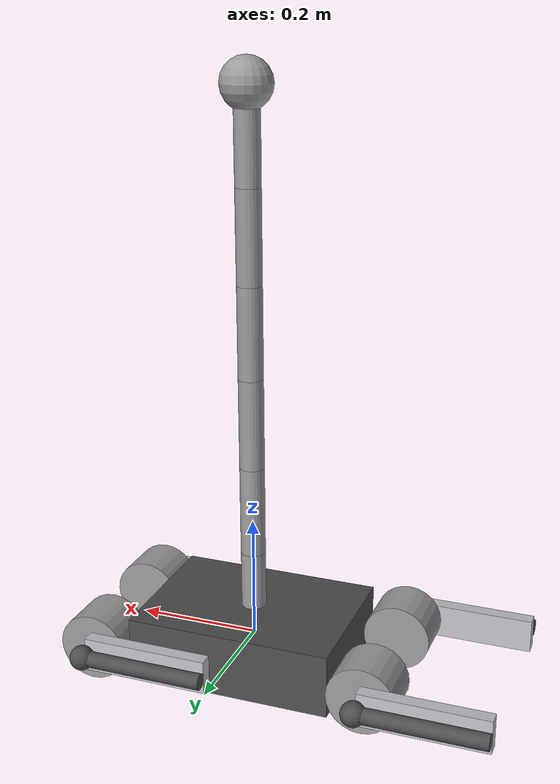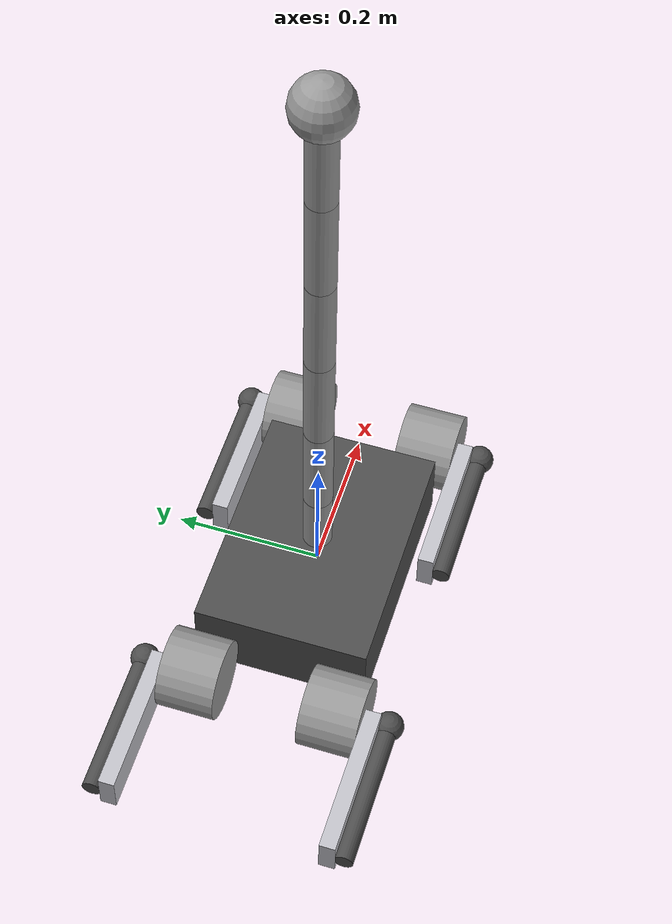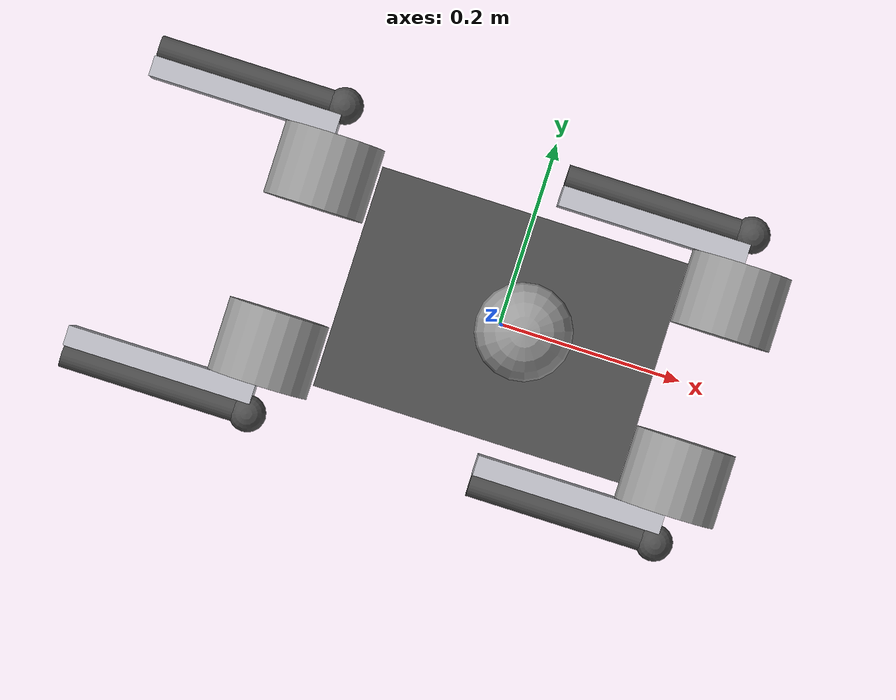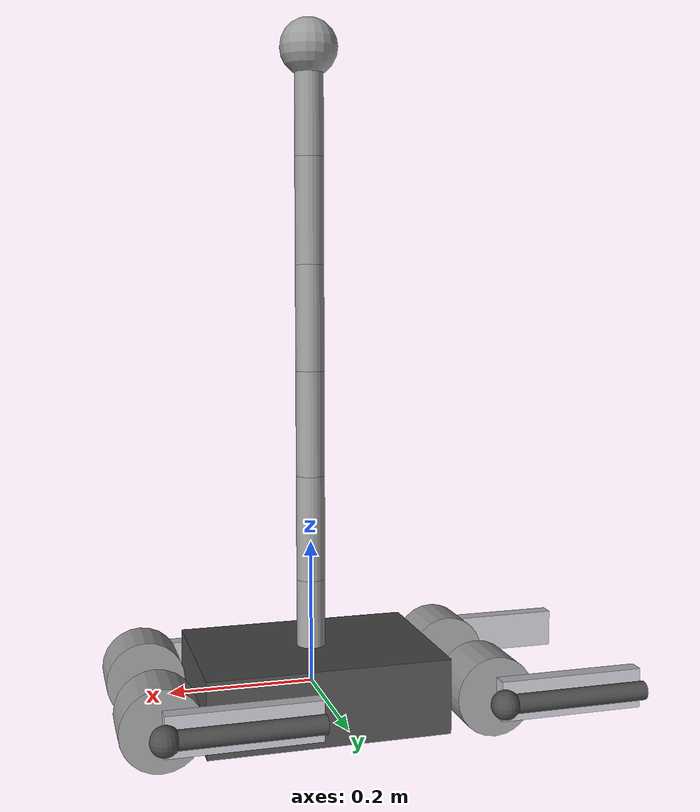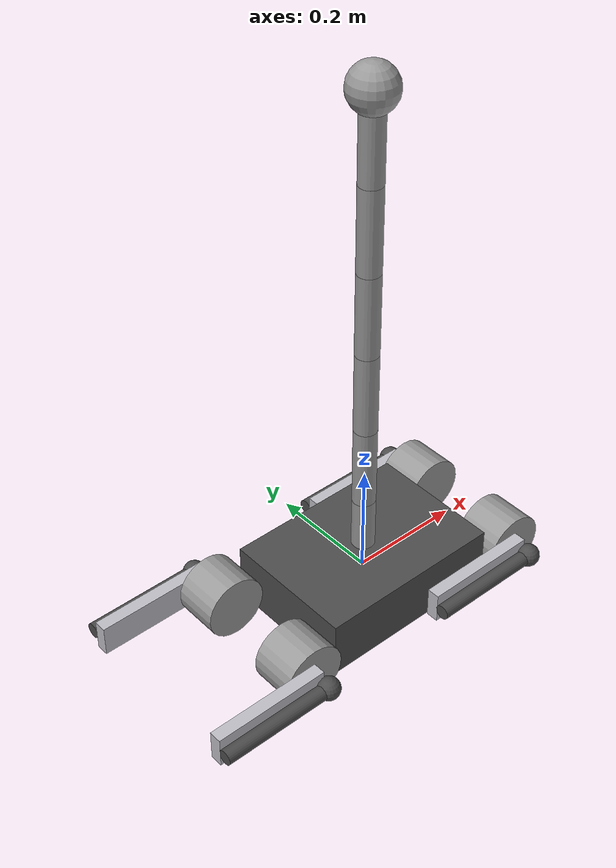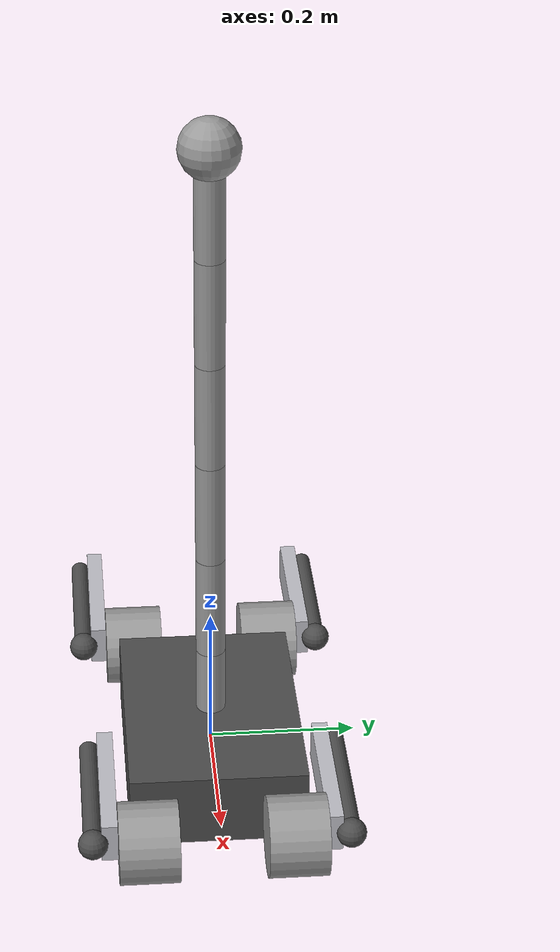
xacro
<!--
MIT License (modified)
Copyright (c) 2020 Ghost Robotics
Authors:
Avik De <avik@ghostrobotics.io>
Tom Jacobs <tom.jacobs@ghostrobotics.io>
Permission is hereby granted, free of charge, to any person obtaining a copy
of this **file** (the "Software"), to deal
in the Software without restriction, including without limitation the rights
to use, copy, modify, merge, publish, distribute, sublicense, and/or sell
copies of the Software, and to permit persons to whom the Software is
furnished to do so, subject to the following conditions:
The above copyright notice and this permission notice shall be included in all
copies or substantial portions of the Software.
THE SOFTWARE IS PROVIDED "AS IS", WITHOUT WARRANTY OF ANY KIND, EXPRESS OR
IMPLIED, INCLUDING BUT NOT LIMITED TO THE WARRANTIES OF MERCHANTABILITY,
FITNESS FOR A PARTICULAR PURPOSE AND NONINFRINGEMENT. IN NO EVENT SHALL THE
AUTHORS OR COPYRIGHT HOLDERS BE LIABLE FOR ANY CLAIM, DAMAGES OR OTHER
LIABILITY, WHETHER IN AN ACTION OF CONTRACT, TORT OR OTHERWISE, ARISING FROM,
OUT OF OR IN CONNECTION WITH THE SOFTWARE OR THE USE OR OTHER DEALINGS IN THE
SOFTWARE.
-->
<?xml version="1.0"?>

<robot xmlns:xacro="http://www.ros.org/wiki/xacro" name="spirit">

    <!-- Define parameters -->
    <!-- bodyLength + hipdx should be equal to front to back hip distance -->
    <!-- dy +  dPodAxisToEdge + upperLegWidth should be equal to the center to toe distance along y axis-->
    <xacro:property name="pi" value="3.14159265359" />
    <xacro:property name="bodyLength" value="0.335" />
    <xacro:property name="bodyWidth" value="0.24" />
    <xacro:property name="bodyHeight" value="0.104" />
    <xacro:property name="bodyMass" value="5.75" /> <!-- Original: 5.75 -->
    <xacro:property name="podMass" value="0.575" />
    <xacro:property name="upperLegMass" value="0.792" /> <!-- Original: 0.775 -->
    <xacro:property name="upperLegIxx" value="0.005" /> <!-- guess --> <!-- Original: 0.005 -->
    <xacro:property name="upperLegIyy" value="0.0070" /> <!-- guess --> <!-- Original: 0.001 -->
    <xacro:property name="upperLegIzz" value="0.0070" /> <!-- guess --> <!-- Original: 0.0070 -->
    <xacro:property name="lowerLegMass" value="0.075" />
    <xacro:property name="lowerLegIxx" value="0.000005" /> <!-- guess -->
    <xacro:property name="lowerLegIyy" value="0.0001" /> <!-- guess -->
    <xacro:property name="lowerLegIzz" value="0.0001" /> <!-- guess -->
    <xacro:property name="toeMass" value="0.015" />
    <xacro:property name="upperLegLength" value="0.206" />
    <xacro:property name="upperLegWidth" value="0.022" />
    <xacro:property name="upperLegHeight" value="0.055" />
    <xacro:property name="lowerLegLength" value="0.206" />
    <xacro:property name="lowerLegRadius" value="0.013" /> <!--visual only-->
    <xacro:property name="podLength" value="0.08" />
    <xacro:property name="podRadius" value="0.055" />
    <xacro:property name="dPodAxisToEdge" value="0.028" /> <!--center of pod cylinder to the ab axis-->
    <xacro:property name="abOffs" value="0.10098" />
    <xacro:property name="dx" value="0.2263" />
    <xacro:property name="dy" value="0.07" />
    <xacro:property name="toeRadius" value="0.02" />
    <xacro:property name="toeOffset" value="0.0" />
    <xacro:property name="toeStiffness" value="30000.0" />
    <xacro:property name="toeDamping" value="1000.0" />
    <xacro:property name="toeSpinningFriction" value="0.3" />
    <xacro:property name="toeFriction" value="100.0" />
    <xacro:property name="toeLateralFriction" value="50.0" />
    <xacro:property name="abKinLimit" value="0.707" />
    <xacro:property name="abSpeedLimit" value="37.7" /> <!-- Original: 37.7 -->
    <xacro:property name="abEffortLimit" value="21" /> <!-- Original: 40 -->
    <xacro:property name="jointSpeedLimit" value="37.7" /> <!-- Original: 30 -->
    <xacro:property name="jointEffortLimit" value="21" /> <!-- Original: 40 -->
    <xacro:property name="tailNum" value="6" />
    <xacro:property name="tailLength" value="${0.8816/tailNum}" />
    <xacro:property name="tailLinkMass" value="${1e-03}" />

    <!-- Plugins -->
    <gazebo>
        <plugin name="gazebo_ros_control" filename="libgazebo_ros_control.so">
            <robotNamespace>/spirit</robotNamespace>
            <controlPeriod>0.002</controlPeriod>
        </plugin>
        <plugin name="ground_truth_estimator" filename="libground_truth_estimator.so">
            <updateRateHz>500.0</updateRateHz>
        </plugin>
    </gazebo>

    <!-- Body -->
    <link name="body">
        <visual>
            <origin rpy="0 0 0" xyz="0 0 0" />
            <geometry>
                <box size="${bodyLength} ${bodyWidth} ${bodyHeight}" />
            </geometry>
            <material name="darkgray" />
        </visual>

        <inertial>
            <mass value="7.388" />
            <!-- Uniform box -->
            <inertia ixx="0.0642434782" ixy="0" ixz="0" iyy="0.1284869565" iyz="0" izz="0.1284869565" />
        </inertial>

        <!-- Just copy geometry for collision -->
        <collision>
            <origin rpy="0 0 0" xyz="0 0 0" />
            <geometry>
                <box size="${bodyLength} ${bodyWidth} ${bodyHeight}" />
            </geometry>
        </collision>
    </link>
    <gazebo reference="body">
        <material>Gazebo/Black</material>
    </gazebo>

    <!-- Define our leg macro -->
    <xacro:macro name="leg" params="suffix left front hipJointName kneeJointName abductionJointName hipJointLowerLimit hipJointUpperLimit color">

        <!-- Hip motor -->
        <link name="hip${suffix}">
            <visual>
                <origin rpy="${pi/2} 0 0" xyz="${front * 0} ${left * (dPodAxisToEdge)} 0" />
                <geometry>
                    <cylinder length="${podLength}" radius="${podRadius}" />
                </geometry>
            </visual>

            <collision>
                <origin rpy="${pi/2} 0 0" xyz="0 ${left * (dPodAxisToEdge)} 0" />
                <geometry>
                    <cylinder length="${podLength}" radius="${podRadius}" />
                </geometry>
            </collision>

            <inertial>
                <origin rpy="${pi/2} 0 0" xyz="0 ${left * (dPodAxisToEdge)} 0" />
                <mass value="${podMass}" />
                <inertia ixx="${1/12*podMass*(podLength*podLength + 3*podRadius*podRadius)}" ixy="0" ixz="0" iyy="${1/12*podMass*(podLength*podLength + 3*podRadius*podRadius)}" iyz="0" izz="${1/2*podMass*podRadius*podRadius}" /> <!-- Okay for now... forgot when cylinder is formed what direction is x pointing in -->
                <!--inertia ixx="0.00066963541" ixy="0" ixz="0" iyy="0.00066963541" iyz="0" izz="0.0008696875" /-->
            </inertial>
        </link>
        <gazebo reference="hip${suffix}">
            <material>Gazebo/Grey</material>
        </gazebo>

        <!-- Abduction joint. Joint names are: 8 9 10 11 -->
        <joint name="${abductionJointName}" type="revolute">
            <parent link="body" />
            <child link="hip${suffix}" />
            <axis xyz="1 0 0" />
            <origin xyz="${front * dx} ${left * dy} 0" />
            <limit effort="${abEffortLimit}" velocity="${abSpeedLimit}" lower="${-abKinLimit}" upper="${abKinLimit}" />
            <dynamics damping="0.0" friction="0.0" />
        </joint>

        <!-- Transmission elements required for Gazebo -->
        <transmission name="transmission_${abductionJointName}">
            <type>transmission_interface/SimpleTransmission</type>
            <joint name="${abductionJointName}">
                <hardwareInterface>hardware_interface/EffortJointInterface</hardwareInterface>
            </joint>
            <actuator name="motor_${abductionJointName}">
                <hardwareInterface>EffortJointInterface</hardwareInterface>
                <mechanicalReduction>1</mechanicalReduction>
            </actuator>
        </transmission>

        <!-- Upper leg -->
        <link name="upper${suffix}">
            <visual>
                <origin rpy="0 0 0" xyz="-${upperLegLength/2} ${-left*upperLegWidth} 0" />
                <geometry>
                    <box size="${upperLegLength} ${upperLegWidth} ${upperLegHeight}" />
                </geometry>
                <material name="silver" />
            </visual>

            <collision>
                <origin rpy="0 0 0" xyz="-${upperLegLength/2} ${-left*upperLegWidth} 0" />
                <geometry>
                    <box size="${upperLegLength} ${upperLegWidth} ${upperLegHeight}" />
                </geometry>
            </collision>

            <inertial>
                <origin xyz="${-upperLegLength/2} ${-left*upperLegWidth} 0" rpy="0 0 0" />
                <mass value="${upperLegMass}" />
                <inertia ixx="${upperLegMass/12*(upperLegWidth*upperLegWidth + upperLegHeight*upperLegHeight)}" ixy="0" ixz="0"
                    iyy="${upperLegMass/12*(upperLegLength*upperLegLength + upperLegHeight*upperLegHeight)}" iyz="0"
                    izz="${upperLegMass/12*(upperLegWidth*upperLegWidth + upperLegLength*upperLegLength)}" />
            </inertial>
        </link>
        <gazebo reference="upper${suffix}">
            <self_collide>0</self_collide>
            <material>Gazebo/DarkGrey</material>
        </gazebo>

        <!-- Hip joint. (Motor to upper leg). Joint names are: 0 2 4 6 -->
        <joint name="${hipJointName}" type="revolute">
            <parent link="hip${suffix}" />
            <child link="upper${suffix}" />
            <axis xyz="0 -1 0" />
            <origin xyz="${front * 0} ${left * abOffs} 0" /> <!--  rpy="0 -0.3 0" -->
            <limit effort="${jointEffortLimit}" velocity="${jointSpeedLimit}" lower="${hipJointLowerLimit}" upper="${hipJointUpperLimit}" />
            <dynamics damping="0.0" friction="0.0" />
        </joint>

        <!-- Transmission elements required for Gazebo -->
        <transmission name="transmission_${hipJointName}">
            <type>transmission_interface/SimpleTransmission</type>
            <joint name="${hipJointName}">
                <hardwareInterface>hardware_interface/EffortJointInterface</hardwareInterface>
            </joint>
            <actuator name="motor_${hipJointName}">
                <hardwareInterface>EffortJointInterface</hardwareInterface>
                <mechanicalReduction>1</mechanicalReduction>
            </actuator>
        </transmission>

        <!-- Lower leg -->
        <link name="lower${suffix}">
            <self_collide>0</self_collide>
            <visual>
                <origin rpy="0 ${pi/2} 0" xyz="${lowerLegLength/2} 0 0" />
                <geometry>
                    <cylinder length="${lowerLegLength}" radius="${lowerLegRadius}" />
                </geometry>
                <material name="darkgray" />
            </visual>

            <collision>
                <origin rpy="0 ${pi/2} 0" xyz="${lowerLegLength/2} 0 0" />
                <geometry>
                    <cylinder length="${lowerLegLength}" radius="${lowerLegRadius}" />
                </geometry>
            </collision>

            <inertial>
                <origin xyz="${lowerLegLength/2} 0 0" rpy="0 0 0" />
                <mass value="${lowerLegMass}" />
                <!--inertia ixx="${lowerLegIxx}" ixy="0" ixz="0" iyy="${lowerLegIyy}" iyz="0" izz="${lowerLegIzz}" /-->
                <inertia ixx="${lowerLegMass/12*(upperLegWidth*upperLegWidth + upperLegHeight*upperLegHeight)}" ixy="0" ixz="0"
                    iyy="${lowerLegMass/12*(upperLegLength*upperLegLength + upperLegHeight*upperLegHeight)}" iyz="0"
                    izz="${lowerLegMass/12*(upperLegWidth*upperLegWidth + upperLegLength*upperLegLength)}" />
            </inertial>
        </link>
        <gazebo reference="lower${suffix}">
            <material>Gazebo/Grey</material>
        </gazebo>

        <!-- Knee joint. Joint names are: 1 3 5 7 -->
        <joint name="${kneeJointName}" type="revolute">
            <parent link="upper${suffix}" />
            <child link="lower${suffix}" />
            <axis xyz="0 1 0" />
            <origin xyz="-${upperLegLength} 0 0" /> <!--rpy="0 0.5 0"-->
            <limit effort="${32}" velocity="${25.1}" lower="-6.28" upper="${6.28}" />
            <dynamics damping="0.0" friction="0.0" />
        </joint>

        <!-- Transmission elements required for Gazebo -->
        <transmission name="transmission_${kneeJointName}">
            <type>transmission_interface/SimpleTransmission</type>
            <joint name="${kneeJointName}">
                <hardwareInterface>hardware_interface/EffortJointInterface</hardwareInterface>
            </joint>
            <actuator name="motor_${kneeJointName}">
                <hardwareInterface>EffortJointInterface</hardwareInterface>
                <mechanicalReduction>1</mechanicalReduction>
            </actuator>
        </transmission>

        <!-- Toe -->
        <link name="toe${suffix}">
            <contact>
                <friction_anchor />
                <stiffness value="${toeStiffness}" />
                <damping value="${toeDamping}" />
                <spinning_friction value="${toeSpinningFriction}" />
                <lateral_friction value="${toeLateralFriction}" />
            </contact>
            <visual>
                <origin rpy="0 0 0" xyz="0 0 0" />
                <geometry>
                    <sphere radius="${toeRadius}" />
                </geometry>
                <material name="darkgray" />
            </visual>

            <collision>
                <origin rpy="0 0 0" xyz="0 0 0" />
                <geometry>
                    <sphere radius="${toeRadius}" />
                </geometry>
            </collision>

            <inertial>
                <mass value="${toeMass}" />
                <inertia ixx="0.000025" ixy="0" ixz="0" iyy="0.000025" iyz="0" izz="0.000025" />
            </inertial>
        </link>
        <gazebo reference="toe${suffix}">
            <self_collide>0</self_collide>
            <material>Gazebo/Black</material>
            <collision>
                <surface>
                    <bounce>
                        <restitution_coefficient>0</restitution_coefficient>
                        <threshold>1e+06</threshold>
                    </bounce>
                    <friction>
                        <torsional>
                            <coefficient>${toeSpinningFriction}</coefficient>
                        </torsional>
                        <ode>
                            <mu>${toeFriction}</mu>
                            <mu2>${toeLateralFriction}</mu2>
                        </ode>
                        <bullet>
                            <rolling_friction>${toeSpinningFriction}</rolling_friction>
                            <friction2>${toeLateralFriction}</friction2>
                        </bullet>
                    </friction>
                    <contact>
                        <bullet>
                            <kp>${toeStiffness}</kp>
                            <kd>${toeDamping}</kd>
                        </bullet>
                        <ode>
                            <kp>${toeStiffness}</kp>
                            <kd>${toeDamping}</kd>
                        </ode>
                    </contact>
                </surface>
            </collision>
        </gazebo>

        <joint name="jtoe${suffix}" type="fixed">
            <parent link="lower${suffix}" />
            <child link="toe${suffix}" />
            <origin xyz="${lowerLegLength} 0 -${toeOffset}" />
            <dynamics damping="0.0" friction="0.0" />
        </joint>
    </xacro:macro>

    <!-- Our four legs -->
    <xacro:leg suffix="0" hipJointName="0" kneeJointName="1" abductionJointName="8" front="1" left="1" hipJointLowerLimit="${-1.57}" hipJointUpperLimit="${3.14}" color="darkgray" />
    <xacro:leg suffix="1" hipJointName="2" kneeJointName="3" abductionJointName="9" front="-1" left="1" hipJointLowerLimit="${-1.57}" hipJointUpperLimit="${3.14}" color="darkgray" />
    <xacro:leg suffix="2" hipJointName="4" kneeJointName="5" abductionJointName="10" front="1" left="-1" hipJointLowerLimit="${-1.57}" hipJointUpperLimit="${3.14}" color="darkgray" />
    <xacro:leg suffix="3" hipJointName="6" kneeJointName="7" abductionJointName="11" front="-1" left="-1" hipJointLowerLimit="${-1.57}" hipJointUpperLimit="${3.14}" color="darkgray" />

    <!-- Toe Plugins -->
    <gazebo reference="toe0">
        <sensor name="toe0_contact" type="contact">
            <plugin filename="libgazebo_ros_bumper.so" name="toe0_plugin">
                <alwaysOn>true</alwaysOn>
                <updateRate>500</updateRate>
                <bumperTopicName>gazebo/toe0_contact_state</bumperTopicName>
                <frameName>world</frameName>
            </plugin>
            <contact>
                <collision>toe0_collision</collision>
            </contact>
            <update_rate>500</update_rate>
        </sensor>
    </gazebo>
    <gazebo reference="toe1">
        <sensor name="toe1_contact" type="contact">
            <plugin filename="libgazebo_ros_bumper.so" name="toe1_plugin">
                <alwaysOn>true</alwaysOn>
                <updateRate>500</updateRate>
                <bumperTopicName>gazebo/toe1_contact_state</bumperTopicName>
                <frameName>world</frameName>
            </plugin>
            <contact>
                <collision>toe1_collision</collision>
            </contact>
            <update_rate>500</update_rate>
        </sensor>
    </gazebo>

    <gazebo reference="toe2">
        <sensor name="toe2_contact" type="contact">
            <plugin filename="libgazebo_ros_bumper.so" name="toe2_plugin">
                <alwaysOn>true</alwaysOn>
                <updateRate>500</updateRate>
                <bumperTopicName>gazebo/toe2_contact_state</bumperTopicName>
                <frameName>world</frameName>
            </plugin>
            <contact>
                <collision>toe2_collision</collision>
            </contact>
            <update_rate>500</update_rate>
        </sensor>
    </gazebo>

    <gazebo reference="toe3">
        <sensor name="toe3_contact" type="contact">
            <plugin filename="libgazebo_ros_bumper.so" name="toe3_plugin">
                <alwaysOn>true</alwaysOn>
                <updateRate>500</updateRate>
                <bumperTopicName>gazebo/toe3_contact_state</bumperTopicName>
                <frameName>world</frameName>
            </plugin>
            <contact>
                <collision>toe3_collision</collision>
            </contact>
            <update_rate>500</update_rate>
        </sensor>
    </gazebo>
    <!-- Preserve fixed joints -->
    <gazebo reference='jtoe0'>
        <preserveFixedJoint>true</preserveFixedJoint>
    </gazebo>
    <gazebo reference='jtoe1'>
        <preserveFixedJoint>true</preserveFixedJoint>
    </gazebo>
    <gazebo reference='jtoe2'>
        <preserveFixedJoint>true</preserveFixedJoint>
    </gazebo>
    <gazebo reference='jtoe3'>
        <preserveFixedJoint>true</preserveFixedJoint>
    </gazebo>

    <!-- TAIL -->
    <!-- Remark: Need to incorporate reasonable mass & inertia calc wrt tailLength -->
    <!-- Tail Links -->
    <link name="tail_link_0">
        <visual>
            <origin rpy="0 0 0" xyz="0 0 ${tailLength/2}" />
            <geometry>
                <cylinder radius="0.02" length="${tailLength}" />
            </geometry>
            <material name="gray" />
        </visual>
        <inertial>
            <origin xyz="0 0 ${tailLength/2}" rpy="0 0 0" />
            <mass value="${tailLinkMass}" />
            <!-- Assume inertia of a sphere & scale base of 2/5MR^2 -->
            <inertia ixx="${1e-04/(tailNum*tailNum)}" ixy="0" ixz="0" iyy="${1e-04/(tailNum*tailNum)}" iyz="0" izz="${1e-04/(tailNum*tailNum)}" />
        </inertial>
        <!-- No need to add collision boxes for this -->
    </link>
    <gazebo reference="tail_link_0">
        <material>Gazebo/Gray</material>
    </gazebo>

    <link name="tail_link_1">
        <visual>
            <origin rpy="0 0 0" xyz="0 0 ${tailLength/2}" />
            <geometry>
                <cylinder radius="0.02" length="${tailLength}" />
            </geometry>
            <material name="gray" />
        </visual>
        <inertial>
            <origin xyz="0 0 ${tailLength/2}" rpy="0 0 0" />
            <mass value="${tailLinkMass}" />
            <inertia ixx="${1e-04/(tailNum*tailNum)}" ixy="0" ixz="0" iyy="${1e-04/(tailNum*tailNum)}" iyz="0" izz="${1e-04/(tailNum*tailNum)}" />
        </inertial>
    </link>

    <gazebo reference="tail_link_1">
        <material>Gazebo/Gray</material>
    </gazebo>

    <link name="tail_link_2">
        <visual>
            <origin rpy="0 0 0" xyz="0 0 ${tailLength/2}" />
            <geometry>
                <cylinder radius="0.02" length="${tailLength}" />
            </geometry>
            <material name="gray" />
        </visual>
        <inertial>
            <origin xyz="0 0 ${tailLength/2}" rpy="0 0 0" />
            <mass value="${tailLinkMass}" />
            <inertia ixx="${1e-04/(tailNum*tailNum)}" ixy="0" ixz="0" iyy="${1e-04/(tailNum*tailNum)}" iyz="0" izz="${1e-04/(tailNum*tailNum)}" />
        </inertial>
    </link>

    <gazebo reference="tail_link_2">
        <material>Gazebo/Gray</material>
    </gazebo>

    <link name="tail_link_3">
        <visual>
            <origin rpy="0 0 0" xyz="0 0 ${tailLength/2}" />
            <geometry>
                <cylinder radius="0.02" length="${tailLength}" />
            </geometry>
            <material name="gray" />
        </visual>
        <inertial>
            <origin xyz="0 0 ${tailLength/2}" rpy="0 0 0" />
            <mass value="${tailLinkMass}" />
            <inertia ixx="${1e-04/(tailNum*tailNum)}" ixy="0" ixz="0" iyy="${1e-04/(tailNum*tailNum)}" iyz="0" izz="${1e-04/(tailNum*tailNum)}" />
        </inertial>
    </link>

    <gazebo reference="tail_link_3">
        <material>Gazebo/Gray</material>
    </gazebo>

    <link name="tail_link_4">
        <visual>
            <origin rpy="0 0 0" xyz="0 0 ${tailLength/2}" />
            <geometry>
                <cylinder radius="0.02" length="${tailLength}" />
            </geometry>
            <material name="gray" />
        </visual>
        <inertial>
            <origin xyz="0 0 ${tailLength/2}" rpy="0 0 0" />
            <mass value="${tailLinkMass}" />
            <inertia ixx="${1e-04/(tailNum*tailNum)}" ixy="0" ixz="0" iyy="${1e-04/(tailNum*tailNum)}" iyz="0" izz="${1e-04/(tailNum*tailNum)}" />
        </inertial>
    </link>

    <gazebo reference="tail_link_4">
        <material>Gazebo/Gray</material>
    </gazebo>

    <link name="tail_link_5">
        <visual>
            <origin rpy="0 0 0" xyz="0 0 ${tailLength/2}" />
            <geometry>
                <cylinder radius="0.02" length="${tailLength}" />
            </geometry>
            <material name="gray" />
        </visual>
        <inertial>
            <origin xyz="0 0 ${tailLength/2}" rpy="0 0 0" />
            <mass value="${tailLinkMass}" />
            <inertia ixx="${1e-04/(tailNum*tailNum)}" ixy="0" ixz="0" iyy="${1e-04/(tailNum*tailNum)}" iyz="0" izz="${1e-04/(tailNum*tailNum)}" />
        </inertial>
    </link>

    <gazebo reference="tail_link_5">
        <material>Gazebo/Gray</material>
    </gazebo>

    <link name="tail_mass">
        <visual>
            <origin rpy="0 0 0" xyz="0 0 0" />
            <geometry>
                <sphere radius="0.04" />
            </geometry>
            <material name="gray" />
        </visual>
        <inertial>
            <mass value="0.2764" />
            <inertia ixx="2.764e-04" ixy="0" ixz="0" iyy="2.764e-04" iyz="0" izz="2.764e-04" />
        </inertial>
        <collision>
            <origin rpy="0 0 0" xyz=" 0 0 0" />
            <geometry>
                <sphere radius="0.04" />
            </geometry>
        </collision>
    </link>
    <gazebo reference="tail_mass">
        <material>Gazebo/Gray</material>
        <self_collide>1</self_collide>
    </gazebo>

    <!-- Tail Joints -->
    <!-- Non-planar Tail -->
    <!-- Planar Tail -->
    <joint name="body_tail_joint_0" type="revolute">
        <parent link="body" />
        <child link="tail_link_0" />
        <axis xyz="0 1 0" />
        <origin xyz="0 0 0" rpy="0 0 0" />
        <limit effort="50" lower="-1.57" upper="1.57" velocity="40" />
        <dynamics damping="0.0" friction="0.0" />
    </joint>

    <joint name="body_tail_joint_1" type="revolute">
        <parent link="tail_link_0" />
        <child link="tail_link_1" />
        <axis xyz="0 1 0" />
        <origin xyz="0 0 ${tailLength}" rpy="0 0 0" />
        <limit effort="50" lower="-1.57" upper="1.57" velocity="40" />
        <dynamics damping="0.0" friction="0.0" />
    </joint>

    <joint name="body_tail_joint_2" type="revolute">
        <parent link="tail_link_1" />
        <child link="tail_link_2" />
        <axis xyz="0 1 0" />
        <origin xyz="0 0 ${tailLength}" rpy="0 0 0" />
        <limit effort="50" lower="-1.57" upper="1.57" velocity="40" />
        <dynamics damping="0.0" friction="0.0" />
    </joint>

    <joint name="body_tail_joint_3" type="revolute">
        <parent link="tail_link_2" />
        <child link="tail_link_3" />
        <axis xyz="0 1 0" />
        <origin xyz="0 0 ${tailLength}" rpy="0 0 0" />
        <limit effort="50" lower="-1.57" upper="1.57" velocity="40" />
        <dynamics damping="0.0" friction="0.0" />
    </joint>

    <joint name="body_tail_joint_4" type="revolute">
        <parent link="tail_link_3" />
        <child link="tail_link_4" />
        <axis xyz="0 1 0" />
        <origin xyz="0 0 ${tailLength}" rpy="0 0 0" />
        <limit effort="50" lower="-1.57" upper="1.57" velocity="40" />
        <dynamics damping="0.0" friction="0.0" />
    </joint>

    <joint name="body_tail_joint_5" type="revolute">
        <parent link="tail_link_4" />
        <child link="tail_link_5" />
        <axis xyz="0 1 0" />
        <origin xyz="0 0 ${tailLength}" rpy="0 0 0" />
        <limit effort="50" lower="-1.57" upper="1.57" velocity="40" />
        <dynamics damping="0.0" friction="0.0" />
    </joint>

    <joint name="tail_link_mass_joint" type="fixed">
        <parent link="tail_link_5" />
        <child link="tail_mass" />
        <origin xyz="0 0 ${tailLength}" />
        <dynamic damping="0.0" friction="0.0" />
    </joint>

    <!-- Transmission Elements Required for Gazebo Control -->
    <transmission name="transmission_body_tail_joint_0">
        <type>transmission_interface/SimpleTransmission</type>
        <joint name="body_tail_joint_0">
            <hardwareInterface>hardware_interface/EffortJointInterface</hardwareInterface>
        </joint>
        <actuator name="motor_body_tail_joint_0">
            <hardwareInterface>hardware_interface/EffortJointInterface</hardwareInterface>
            <mechanicalReduction>1</mechanicalReduction>
        </actuator>
    </transmission>

    <transmission name="transmission_body_tail_joint_1">
        <type>transmission_interface/SimpleTransmission</type>
        <joint name="body_tail_joint_1">
            <hardwareInterface>hardware_interface/EffortJointInterface</hardwareInterface>
        </joint>
        <actuator name="motor_body_tail_joint_1">
            <hardwareInterface>hardware_interface/EffortJointInterface</hardwareInterface>
            <mechanicalReduction>1</mechanicalReduction>
        </actuator>
    </transmission>

    <transmission name="transmission_body_tail_joint_2">
        <type>transmission_interface/SimpleTransmission</type>
        <joint name="body_tail_joint_2">
            <hardwareInterface>hardware_interface/EffortJointInterface</hardwareInterface>
        </joint>
        <actuator name="motor_body_tail_joint_2">
            <hardwareInterface>hardware_interface/EffortJointInterface</hardwareInterface>
            <mechanicalReduction>1</mechanicalReduction>
        </actuator>
    </transmission>

    <transmission name="transmission_body_tail_joint_3">
        <type>transmission_interface/SimpleTransmission</type>
        <joint name="body_tail_joint_3">
            <hardwareInterface>hardware_interface/EffortJointInterface</hardwareInterface>
        </joint>
        <actuator name="motor_body_tail_joint_3">
            <hardwareInterface>hardware_interface/EffortJointInterface</hardwareInterface>
            <mechanicalReduction>1</mechanicalReduction>
        </actuator>
    </transmission>

    <transmission name="transmission_body_tail_joint_4">
        <type>transmission_interface/SimpleTransmission</type>
        <joint name="body_tail_joint_4">
            <hardwareInterface>hardware_interface/EffortJointInterface</hardwareInterface>
        </joint>
        <actuator name="motor_body_tail_joint_4">
            <hardwareInterface>hardware_interface/EffortJointInterface</hardwareInterface>
            <mechanicalReduction>1</mechanicalReduction>
        </actuator>
    </transmission>

    <transmission name="transmission_body_tail_joint_5">
        <type>transmission_interface/SimpleTransmission</type>
        <joint name="body_tail_joint_5">
            <hardwareInterface>hardware_interface/EffortJointInterface</hardwareInterface>
        </joint>
        <actuator name="motor_body_tail_joint_5">
            <hardwareInterface>hardware_interface/EffortJointInterface</hardwareInterface>
            <mechanicalReduction>1</mechanicalReduction>
        </actuator>
    </transmission>
</robot>
